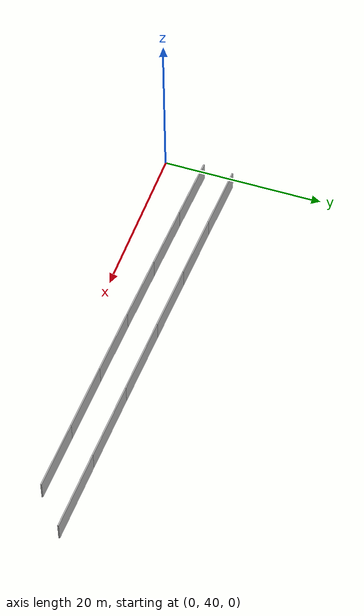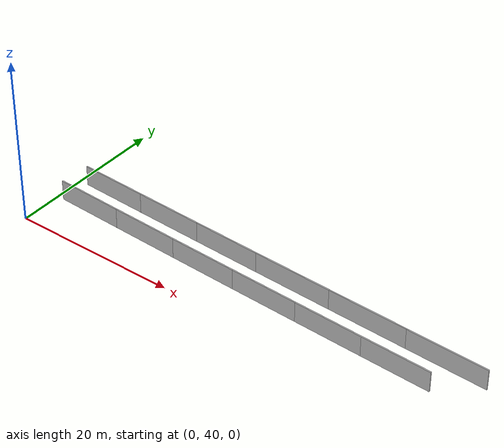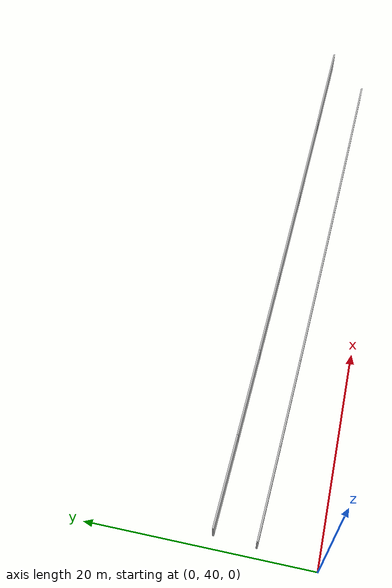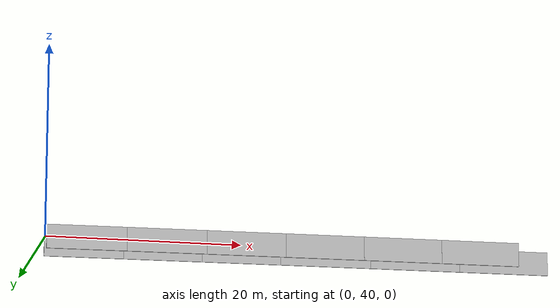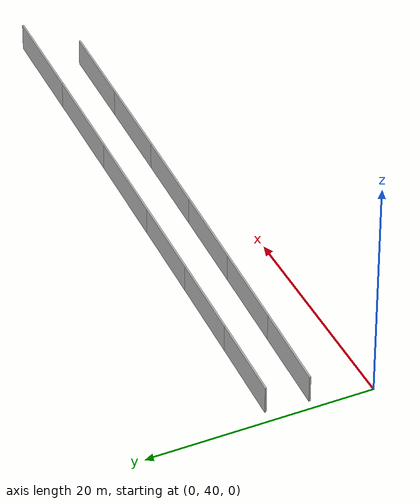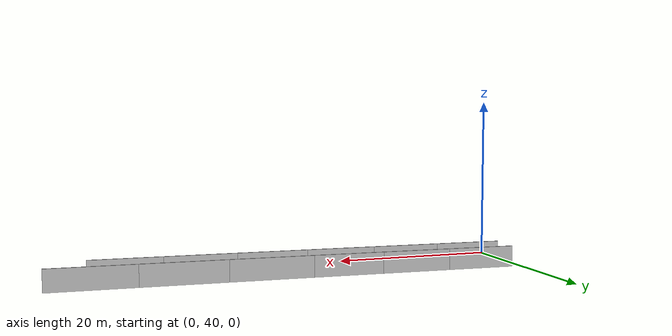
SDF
<?xml version="1.0" ?>
<sdf version="1.6">
  <model name="sps_4101">
    <pose frame="">0 0 0 0 -0 0</pose>
    <static>1</static>
    <self_collide>0</self_collide>
    <allow_auto_disable>0</allow_auto_disable>
    <link name="Wall4257">
      <kinematic>0</kinematic>
      <gravity>1</gravity>
      <self_collide>0</self_collide>
      <collision name="collision">
        <geometry>
          <box>
            <size>8.25204 0.15 2.5</size>
          </box>
        </geometry>
        <pose frame="">0 0 0 0 -0 0</pose>
      </collision>
      <visual name="visual">
        <geometry>
          <box>
            <size>8.25204 0.15 2.5</size>
          </box>
        </geometry>
        <pose frame="">0 0 0 0 -0 0</pose>
        <cast_shadows>1</cast_shadows>
        <transparency>0.0</transparency>
      </visual>
      <pose frame="">5.23473 48.8557 1.25 0 0 -0.0435858</pose>
    </link>
    <link name="Wall4258">
      <kinematic>0</kinematic>
      <gravity>1</gravity>
      <self_collide>0</self_collide>
      <collision name="collision">
        <geometry>
          <box>
            <size>8.25202 0.15 2.5</size>
          </box>
        </geometry>
        <pose frame="">0 0 0 0 -0 0</pose>
      </collision>
      <visual name="visual">
        <geometry>
          <box>
            <size>8.25202 0.15 2.5</size>
          </box>
        </geometry>
        <pose frame="">0 0 0 0 -0 0</pose>
        <cast_shadows>1</cast_shadows>
        <transparency>0.0</transparency>
      </visual>
      <pose frame="">13.4793 48.5057 1.25 0 0 -0.0412688</pose>
    </link>
    <link name="Wall4259">
      <kinematic>0</kinematic>
      <gravity>1</gravity>
      <self_collide>0</self_collide>
      <collision name="collision">
        <geometry>
          <box>
            <size>8.25208 0.15 2.5</size>
          </box>
        </geometry>
        <pose frame="">0 0 0 0 -0 0</pose>
      </collision>
      <visual name="visual">
        <geometry>
          <box>
            <size>8.25208 0.15 2.5</size>
          </box>
        </geometry>
        <pose frame="">0 0 0 0 -0 0</pose>
        <cast_shadows>1</cast_shadows>
        <transparency>0.0</transparency>
      </visual>
      <pose frame="">21.7248 48.1752 1.25 0 0 -0.0388553</pose>
    </link>
    <link name="Wall4260">
      <kinematic>0</kinematic>
      <gravity>1</gravity>
      <self_collide>0</self_collide>
      <collision name="collision">
        <geometry>
          <box>
            <size>9.60582 0.15 2.5</size>
          </box>
        </geometry>
        <pose frame="">0 0 0 0 -0 0</pose>
      </collision>
      <visual name="visual">
        <geometry>
          <box>
            <size>9.60582 0.15 2.5</size>
          </box>
        </geometry>
        <pose frame="">0 0 0 0 -0 0</pose>
        <cast_shadows>1</cast_shadows>
        <transparency>0.0</transparency>
      </visual>
      <pose frame="">30.6475 47.8414 1.25 0 0 -0.0361302</pose>
    </link>
    <link name="Wall4261">
      <kinematic>0</kinematic>
      <gravity>1</gravity>
      <self_collide>0</self_collide>
      <collision name="collision">
        <geometry>
          <box>
            <size>9.6057 0.15 2.5</size>
          </box>
        </geometry>
        <pose frame="">0 0 0 0 -0 0</pose>
      </collision>
      <visual name="visual">
        <geometry>
          <box>
            <size>9.6057 0.15 2.5</size>
          </box>
        </geometry>
        <pose frame="">0 0 0 0 -0 0</pose>
        <cast_shadows>1</cast_shadows>
        <transparency>0.0</transparency>
      </visual>
      <pose frame="">40.2473 47.5057 1.25 0 0 -0.0337782</pose>
    </link>
    <link name="Wall4262">
      <kinematic>0</kinematic>
      <gravity>1</gravity>
      <self_collide>0</self_collide>
      <collision name="collision">
        <geometry>
          <box>
            <size>9.60593 0.15 2.5</size>
          </box>
        </geometry>
        <pose frame="">0 0 0 0 -0 0</pose>
      </collision>
      <visual name="visual">
        <geometry>
          <box>
            <size>9.60593 0.15 2.5</size>
          </box>
        </geometry>
        <pose frame="">0 0 0 0 -0 0</pose>
        <cast_shadows>1</cast_shadows>
        <transparency>0.0</transparency>
      </visual>
      <pose frame="">49.848 47.1927 1.25 0 0 -0.0314061</pose>
    </link>
    <link name="Wall8999">
      <kinematic>0</kinematic>
      <gravity>1</gravity>
      <self_collide>0</self_collide>
      <collision name="collision">
        <geometry>
          <box>
            <size>8.26208 0.15 2.5</size>
          </box>
        </geometry>
        <pose frame="">0 0 0 0 -0 0</pose>
      </collision>
      <visual name="visual">
        <geometry>
          <box>
            <size>8.26208 0.15 2.5</size>
          </box>
        </geometry>
        <pose frame="">0 0 0 0 -0 0</pose>
        <cast_shadows>1</cast_shadows>
        <transparency>0.0</transparency>
      </visual>
      <pose frame="">4.97155 45.1071 1.25 0 0 -0.0436364</pose>
    </link>
    <link name="Wall9000">
      <kinematic>0</kinematic>
      <gravity>1</gravity>
      <self_collide>0</self_collide>
      <collision name="collision">
        <geometry>
          <box>
            <size>8.26162 0.15 2.5</size>
          </box>
        </geometry>
        <pose frame="">0 0 0 0 -0 0</pose>
      </collision>
      <visual name="visual">
        <geometry>
          <box>
            <size>8.26162 0.15 2.5</size>
          </box>
        </geometry>
        <pose frame="">0 0 0 0 -0 0</pose>
        <cast_shadows>1</cast_shadows>
        <transparency>0.0</transparency>
      </visual>
      <pose frame="">13.2259 44.7564 1.25 0 0 -0.0412873</pose>
    </link>
    <link name="Wall9001">
      <kinematic>0</kinematic>
      <gravity>1</gravity>
      <self_collide>0</self_collide>
      <collision name="collision">
        <geometry>
          <box>
            <size>8.26187 0.15 2.5</size>
          </box>
        </geometry>
        <pose frame="">0 0 0 0 -0 0</pose>
      </collision>
      <visual name="visual">
        <geometry>
          <box>
            <size>8.26187 0.15 2.5</size>
          </box>
        </geometry>
        <pose frame="">0 0 0 0 -0 0</pose>
        <cast_shadows>1</cast_shadows>
        <transparency>0.0</transparency>
      </visual>
      <pose frame="">21.481 44.4252 1.25 0 0 -0.0389128</pose>
    </link>
    <link name="Wall9002">
      <kinematic>0</kinematic>
      <gravity>1</gravity>
      <self_collide>0</self_collide>
      <collision name="collision">
        <geometry>
          <box>
            <size>8.26191 0.15 2.5</size>
          </box>
        </geometry>
        <pose frame="">0 0 0 0 -0 0</pose>
      </collision>
      <visual name="visual">
        <geometry>
          <box>
            <size>8.26191 0.15 2.5</size>
          </box>
        </geometry>
        <pose frame="">0 0 0 0 -0 0</pose>
        <cast_shadows>1</cast_shadows>
        <transparency>0.0</transparency>
      </visual>
      <pose frame="">29.7371 44.1137 1.25 0 0 -0.0365099</pose>
    </link>
    <link name="Wall9003">
      <kinematic>0</kinematic>
      <gravity>1</gravity>
      <self_collide>0</self_collide>
      <collision name="collision">
        <geometry>
          <box>
            <size>8.26185 0.15 2.5</size>
          </box>
        </geometry>
        <pose frame="">0 0 0 0 -0 0</pose>
      </collision>
      <visual name="visual">
        <geometry>
          <box>
            <size>8.26185 0.15 2.5</size>
          </box>
        </geometry>
        <pose frame="">0 0 0 0 -0 0</pose>
        <cast_shadows>1</cast_shadows>
        <transparency>0.0</transparency>
      </visual>
      <pose frame="">37.9938 43.8217 1.25 0 0 -0.034189</pose>
    </link>
    <link name="Wall9004">
      <kinematic>0</kinematic>
      <gravity>1</gravity>
      <self_collide>0</self_collide>
      <collision name="collision">
        <geometry>
          <box>
            <size>8.26175 0.15 2.5</size>
          </box>
        </geometry>
        <pose frame="">0 0 0 0 -0 0</pose>
      </collision>
      <visual name="visual">
        <geometry>
          <box>
            <size>8.26175 0.15 2.5</size>
          </box>
        </geometry>
        <pose frame="">0 0 0 0 -0 0</pose>
        <cast_shadows>1</cast_shadows>
        <transparency>0.0</transparency>
      </visual>
      <pose frame="">46.2511 43.5491 1.25 0 0 -0.0318167</pose>
    </link>
  </model>
</sdf>
